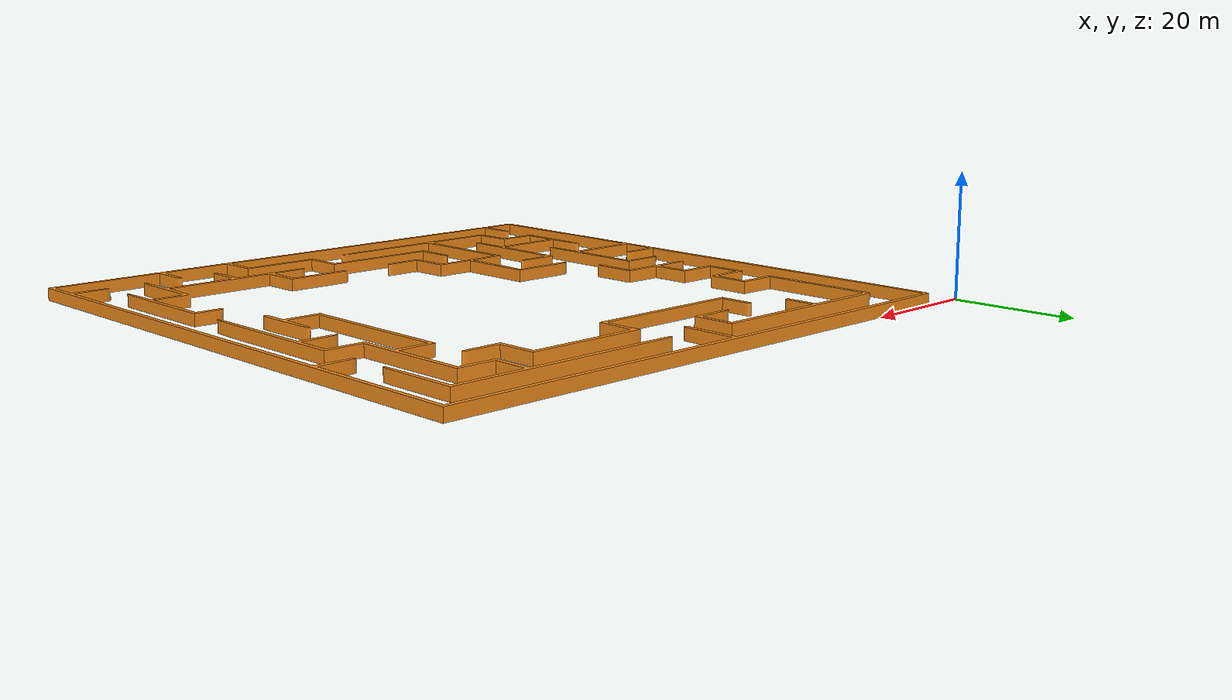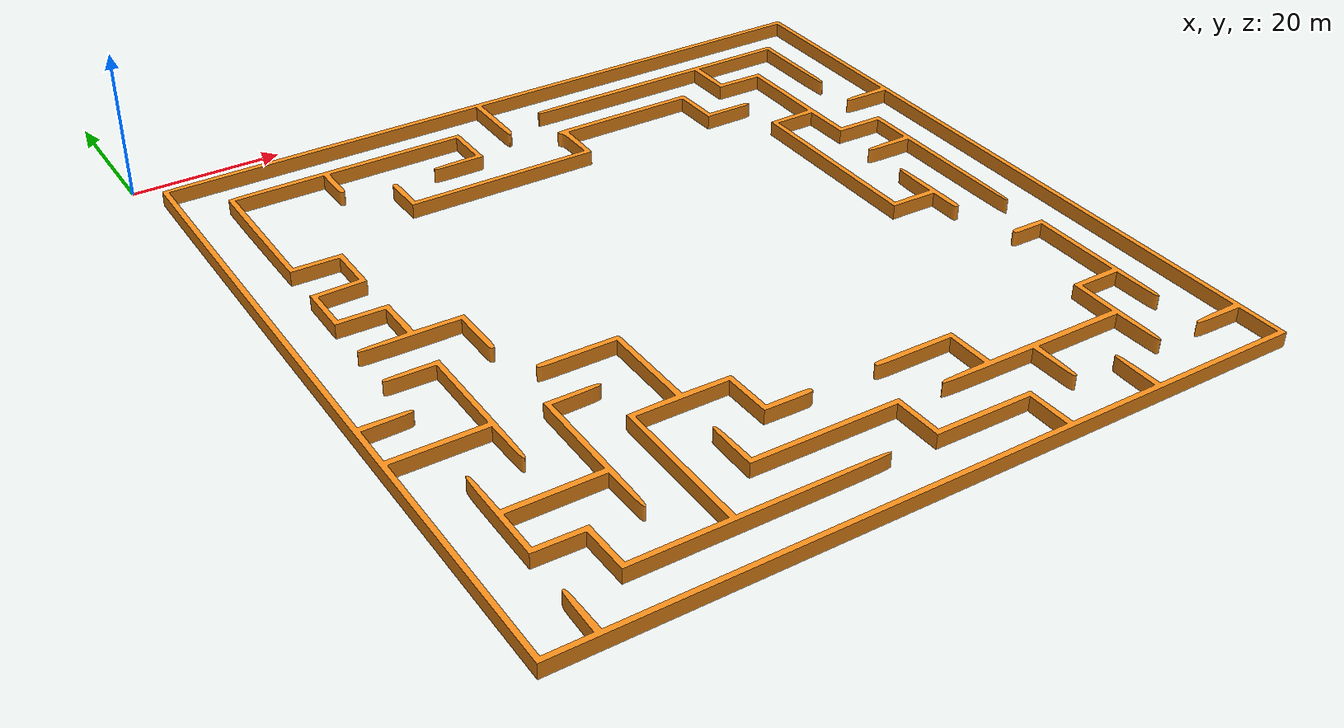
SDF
<?xml version="1.0" ?>
<sdf version="1.5">
  <model name="rcap_outdoor1">
    <static>true</static>
    <pose>0 0 0 0 0 0</pose>
    <link name="link">
      <collision name="collision">
        <geometry>
          <mesh>
            <uri>model://rcap_outdoor1/rcap_outdoor1.stl</uri>
            <scale>576 576 50</scale>
          </mesh>
        </geometry>
      </collision>
      <visual name="visual">
        <geometry>
          <mesh>
            <uri>model://rcap_outdoor1/rcap_outdoor1.stl</uri>
            <scale>576 576 50</scale>
          </mesh>
        </geometry>
        <cast_shadows>false</cast_shadows>
        <material>
          <script>
            <uri>file://media/materials/scripts/gazebo.material</uri>
            <name>Gazebo/Orange</name>
          </script>
        </material>
      </visual>
    </link>
  </model>
</sdf>
